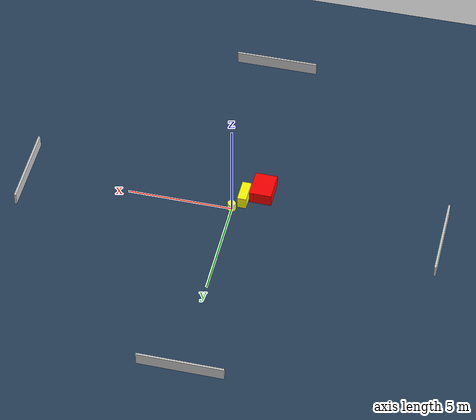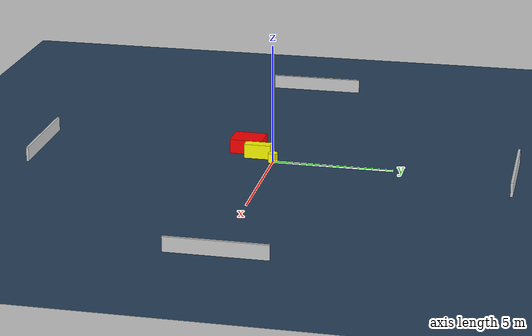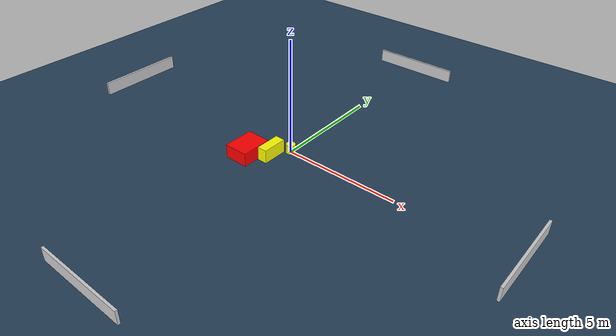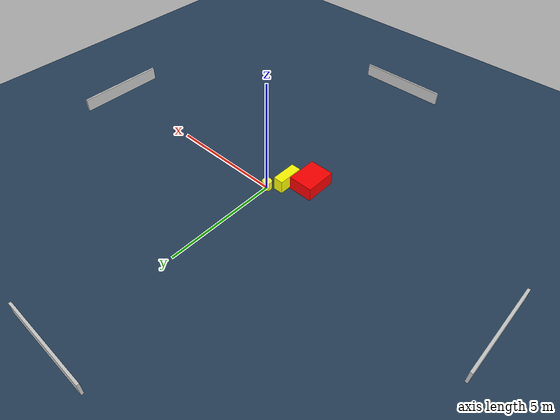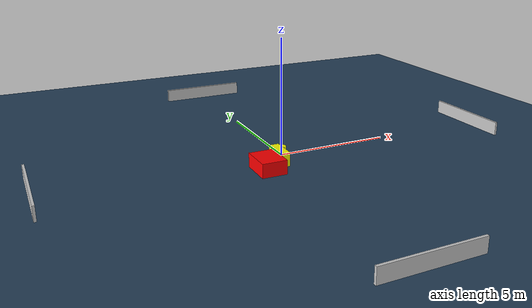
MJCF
<?xml version="1.0" ?>
<mujoco model="generated_environment">
  <option timestep="0.01" integrator="RK4" cone="elliptic"/>
  <default>
    <geom density="1"/>
  </default>
  <asset>
    <texture builtin="gradient" height="3072" name="skybox" rgb1="0.3 0.5 0.7" rgb2="0 0 0" type="skybox" width="512"/>
    <texture builtin="checker" height="300" name="groundplane" rgb1="0.2 0.3 0.4" rgb2="0.1 0.2 0.3" type="2d" width="300"/>
    <material name="groundplane" reflectance="0.2" texrepeat="5 5" texture="groundplane"/>
  </asset>
  <worldbody>
    <light dir="0 0 -1" directional="true" pos="0 0 1.5"/>
    <geom condim="3" friction="0.5 0.005 0.001" material="groundplane" name="floor" pos="0 0 0" size="0 0 0.05" type="plane"/>
    <body name="walls">
      <geom name="wall_1" condim="4" pos="-10.0 0.0 0.3" rgba="0.800000011920929 0.800000011920929 0.800000011920929 1.0" size="0.05 2.0 0.3" type="box"/>
      <geom name="wall_2" condim="4" pos="10.0 0.0 0.3" rgba="0.800000011920929 0.800000011920929 0.800000011920929 1.0" size="0.05 2.0 0.3" type="box"/>
      <geom name="wall_3" condim="4" pos="0.0 -10.0 0.3" rgba="0.800000011920929 0.800000011920929 0.800000011920929 1.0" size="2.0 0.05 0.3" type="box"/>
      <geom name="wall_4" condim="4" pos="0.0 10.0 0.3" rgba="0.800000011920929 0.800000011920929 0.800000011920929 1.0" size="2.0 0.05 0.3" type="box"/>
    </body>
    <body name="robot">
      <joint name="joint_x" type="slide" pos="0 0 0" axis="1 0 0"/>
      <joint name="joint_y" type="slide" pos="0 0 0" axis="0 1 0"/>
      <geom name="robot" type="cylinder" pos="0.0 0.0 0.2" size="0.2 0.2 0.0" mass="5.0" friction="1.0 0.005 0.0001" condim="4" rgba="1.0 1.0 0.0 1.0"/>
    </body>
    <body name="obstacle_1_movable">
      <geom name="obstacle_1_movable" condim="4" pos="-0.44289403389839416 -0.7261360009250731 0.3" euler="0 0 269.5853891106292" friction="0.0 0.005 0.001" rgba="1.0 1.0 0.0 1.0" size="0.5543170051143339 0.2128275397451694 0.3" type="box" mass="0.1"/>
      <joint type="free"/>
    </body>
    <body name="obstacle_2_static">
      <geom name="obstacle_2_static" condim="4" pos="-1.2285916813246995 -1.3089790470997624 0.3" euler="0 0 359.4807906293798" friction="0.0 0.005 0.001" rgba="1.0 0.0 0.0 1.0" size="0.5299575778309555 0.6811116785459521 0.3" type="box"/>
    </body>
  </worldbody>
  <actuator>
    <motor name="actuator_x" joint="joint_x" gear="1" ctrlrange="-1 1"/>
    <motor name="actuator_y" joint="joint_y" gear="1" ctrlrange="-1 1"/>
  </actuator>
</mujoco>
